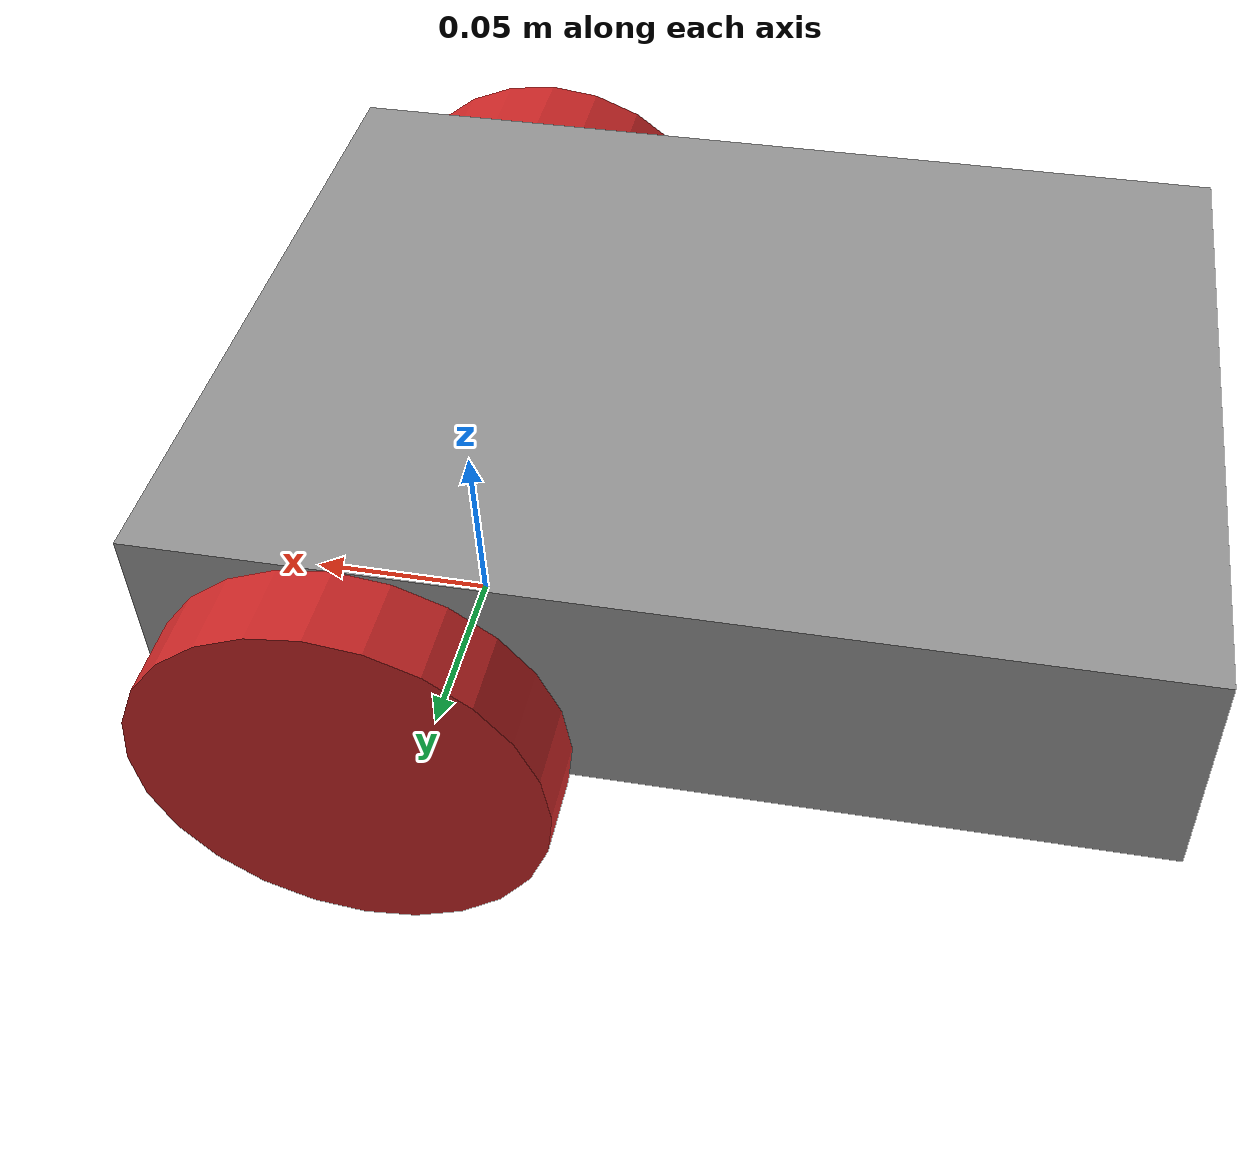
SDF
<sdf version='1.7'>
  <model name='dolly'>
    <link name='base_link'>
      <inertial>
        <pose>-0.07 0 0.07 0 -0 0</pose>
        <mass>1</mass>
        <inertia>
          <ixx>0.001</ixx>
          <ixy>0</ixy>
          <ixz>0</ixz>
          <iyy>0.001</iyy>
          <iyz>0</iyz>
          <izz>0.001</izz>
        </inertia>
      </inertial>
      <collision name='base_link_fixed_joint_lump__ball_link_collision'>
        <pose>-0.14 0 0.04 0 -0 0</pose>
        <geometry>
          <sphere>
            <radius>0.04</radius>
          </sphere>
        </geometry>
        <surface>
          <contact>
            <ode/>
          </contact>
          <friction>
            <ode>
              <mu>0.5</mu>
              <mu2>0.5</mu2>
            </ode>
          </friction>
        </surface>
      </collision>
      <collision name='base_link_fixed_joint_lump__body_link_collision_1'>
        <pose>-0.07 0 0.07 0 -0 0</pose>
        <geometry>
          <box>
            <size>0.24 0.178 0.06</size>
          </box>
        </geometry>
        <surface>
          <contact>
            <ode/>
          </contact>
          <friction>
            <ode/>
          </friction>
        </surface>
      </collision>
      <visual name='base_link_fixed_joint_lump__ball_link_visual'>
        <pose>-0.14 0 0.04 0 -0 0</pose>
        <geometry>
          <sphere>
            <radius>0.04</radius>
          </sphere>
        </geometry>
        <material>
          <script>
            <name>Gazebo/Gray</name>
            <uri>file://media/materials/scripts/gazebo.material</uri>
          </script>
        </material>
      </visual>
      <visual name='base_link_fixed_joint_lump__body_link_visual_1'>
        <pose>-0.07 0 0.07 0 -0 0</pose>
        <geometry>
          <box>
            <size>0.24 0.18 0.06</size>
          </box>
        </geometry>
        <material>
          <script>
            <name>Gazebo/Gray</name>
            <uri>file://media/materials/scripts/gazebo.material</uri>
          </script>
        </material>
      </visual>
      <velocity_decay/>
      <gravity>1</gravity>
      <velocity_decay/>
    </link>
    <joint name='left_wheel_joint' type='revolute'>
      <pose relative_to='base_link'>0 0.1 0.05 -1.5708 0 0</pose>
      <parent>base_link</parent>
      <child>left_wheel_link</child>
      <axis>
        <xyz>0 0 1</xyz>
        <limit>
          <lower>-1e+16</lower>
          <upper>1e+16</upper>
        </limit>
        <dynamics>
          <spring_reference>0</spring_reference>
          <spring_stiffness>0</spring_stiffness>
        </dynamics>
      </axis>
    </joint>
    <link name='left_wheel_link'>
      <pose relative_to='left_wheel_joint'>0 0 0 0 -0 0</pose>
      <inertial>
        <pose>0 0 0 0 -0 0</pose>
        <mass>0.1</mass>
        <inertia>
          <ixx>0.0001</ixx>
          <ixy>0</ixy>
          <ixz>0</ixz>
          <iyy>0.0001</iyy>
          <iyz>0</iyz>
          <izz>0.0001</izz>
        </inertia>
      </inertial>
      <collision name='left_wheel_link_collision'>
        <pose>0 0 0 0 -0 0</pose>
        <geometry>
          <cylinder>
            <length>0.02</length>
            <radius>0.05</radius>
          </cylinder>
        </geometry>
        <surface>
          <contact>
            <ode>
              <kp>50000</kp>
              <kd>10</kd>
            </ode>
          </contact>
          <friction>
            <ode>
              <mu>2.5</mu>
              <mu2>2.5</mu2>
            </ode>
          </friction>
        </surface>
      </collision>
      <visual name='left_wheel_link_visual'>
        <pose>0 0 0 0 -0 0</pose>
        <geometry>
          <cylinder>
            <length>0.02</length>
            <radius>0.05</radius>
          </cylinder>
        </geometry>
        <material>
          <script>
            <name>Gazebo/Red</name>
            <uri>file://media/materials/scripts/gazebo.material</uri>
          </script>
        </material>
      </visual>
      <gravity>1</gravity>
      <velocity_decay/>
    </link>
    <joint name='right_wheel_joint' type='revolute'>
      <pose relative_to='base_link'>0 -0.1 0.05 -1.5708 0 0</pose>
      <parent>base_link</parent>
      <child>right_wheel_link</child>
      <axis>
        <xyz>0 0 1</xyz>
        <limit>
          <lower>-1e+16</lower>
          <upper>1e+16</upper>
        </limit>
        <dynamics>
          <spring_reference>0</spring_reference>
          <spring_stiffness>0</spring_stiffness>
        </dynamics>
      </axis>
    </joint>
    <link name='right_wheel_link'>
      <pose relative_to='right_wheel_joint'>0 0 0 0 -0 0</pose>
      <inertial>
        <pose>0 0 0 0 -0 0</pose>
        <mass>0.1</mass>
        <inertia>
          <ixx>0.0001</ixx>
          <ixy>0</ixy>
          <ixz>0</ixz>
          <iyy>0.0001</iyy>
          <iyz>0</iyz>
          <izz>0.0001</izz>
        </inertia>
      </inertial>
      <collision name='right_wheel_link_collision'>
        <pose>0 0 0 0 -0 0</pose>
        <geometry>
          <cylinder>
            <length>0.02</length>
            <radius>0.05</radius>
          </cylinder>
        </geometry>
        <surface>
          <contact>
            <ode>
              <kp>50000</kp>
              <kd>10</kd>
            </ode>
          </contact>
          <friction>
            <ode>
              <mu>2.5</mu>
              <mu2>2.5</mu2>
            </ode>
          </friction>
        </surface>
      </collision>
      <visual name='right_wheel_link_visual'>
        <pose>0 0 0 0 -0 0</pose>
        <geometry>
          <cylinder>
            <length>0.02</length>
            <radius>0.05</radius>
          </cylinder>
        </geometry>
        <material>
          <script>
            <name>Gazebo/Red</name>
            <uri>file://media/materials/scripts/gazebo.material</uri>
          </script>
        </material>
      </visual>
      <gravity>1</gravity>
      <velocity_decay/>
    </link>
  </model>
  </sdf>

<gazebo>
  <plugin
    filename="libignition-gazebo-diff-drive-system.so"
    name="ignition::gazebo::systems::DiffDrive">
    <left_joint>left_wheel_joint</left_joint>
    <right_joint>right_wheel_joint</right_joint>
    <wheel_separation>1.2</wheel_separation>
    <wheel_radius>0.4</wheel_radius>
    <odom_publish_frequency>1</odom_publish_frequency>
    <topic>cmd_vel</topic>
  </plugin>
</gazebo>
